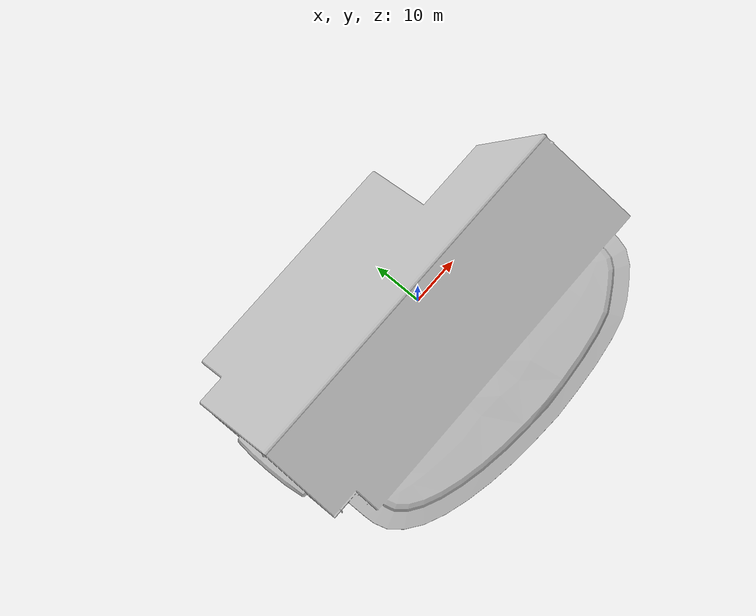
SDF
<?xml version="1.0" ?>
<sdf version="1.6">
  <model name="osrf_first_office1">
    <static>true</static>
    <link name="link">
      <collision name="collision">
        <geometry>
          <mesh>
            <scale>3 3 2.5</scale>
            <uri>model://osrf_first_office/meshes/osrf_first_office.dae</uri>
          </mesh>
        </geometry>
      </collision>
      <visual name="visual">
        <geometry>
          <mesh>
            <scale>3 3 2.5</scale>
            <uri>model://osrf_first_office/meshes/osrf_first_office.dae</uri>
          </mesh>
        </geometry>
      </visual>
    </link>
  </model>
</sdf>
